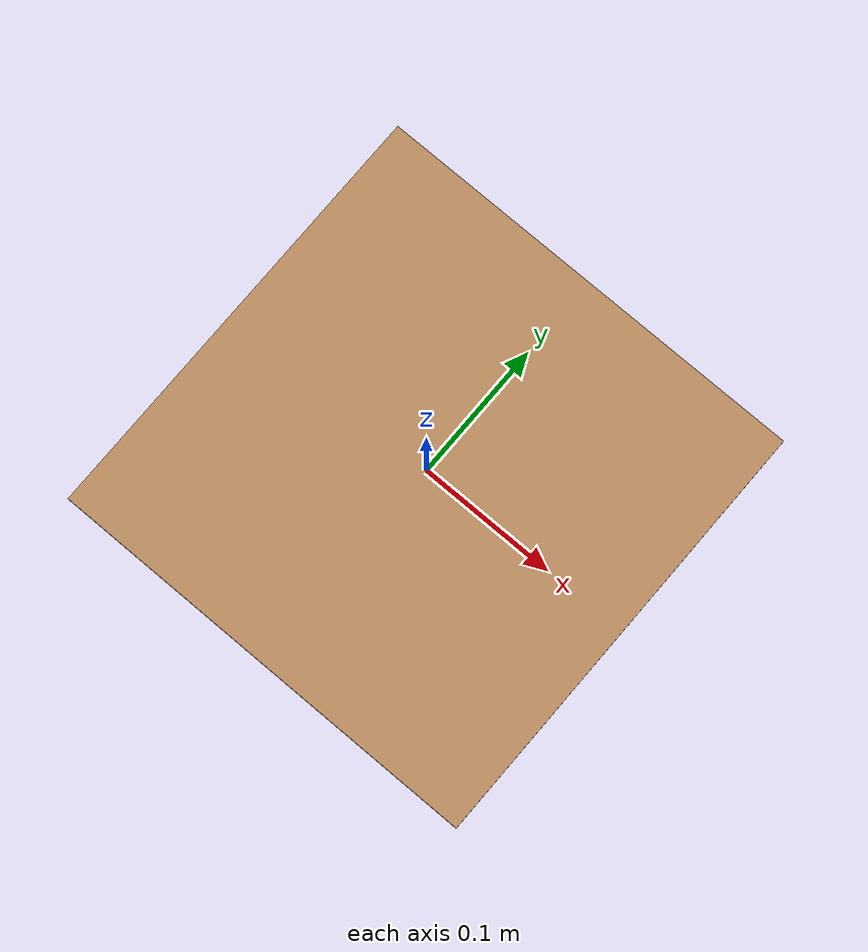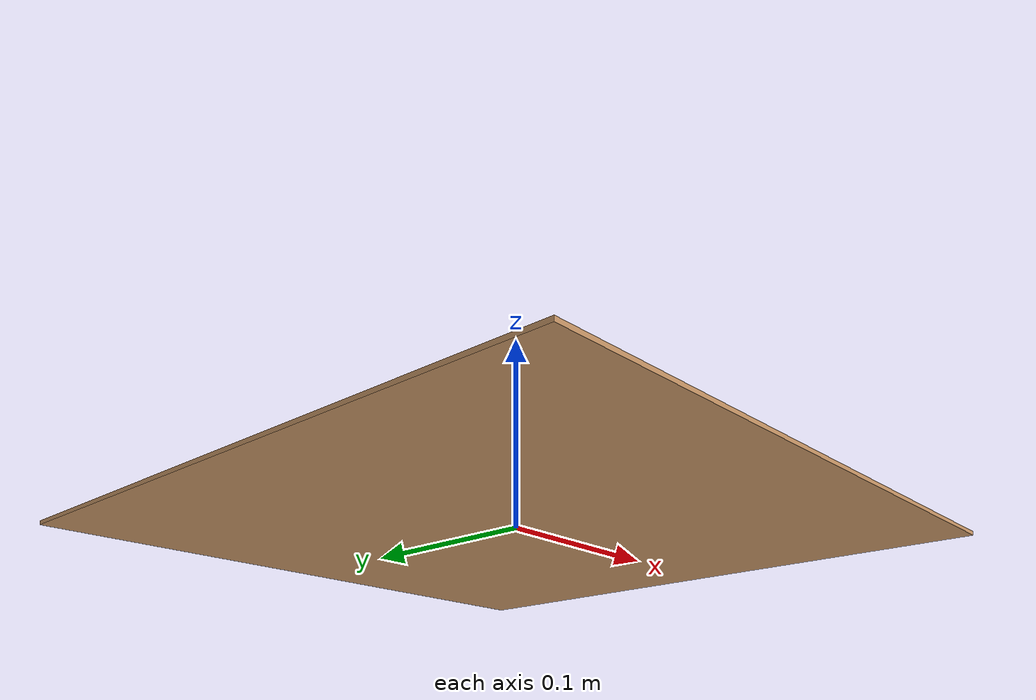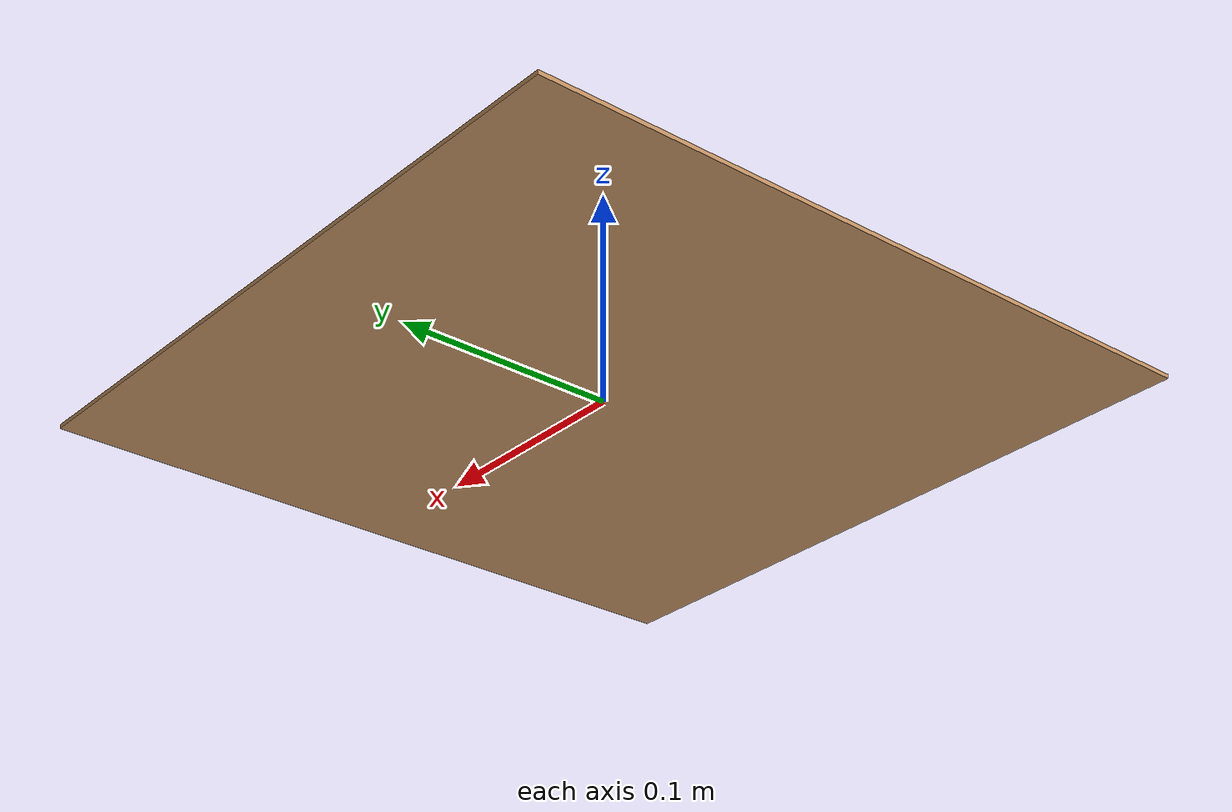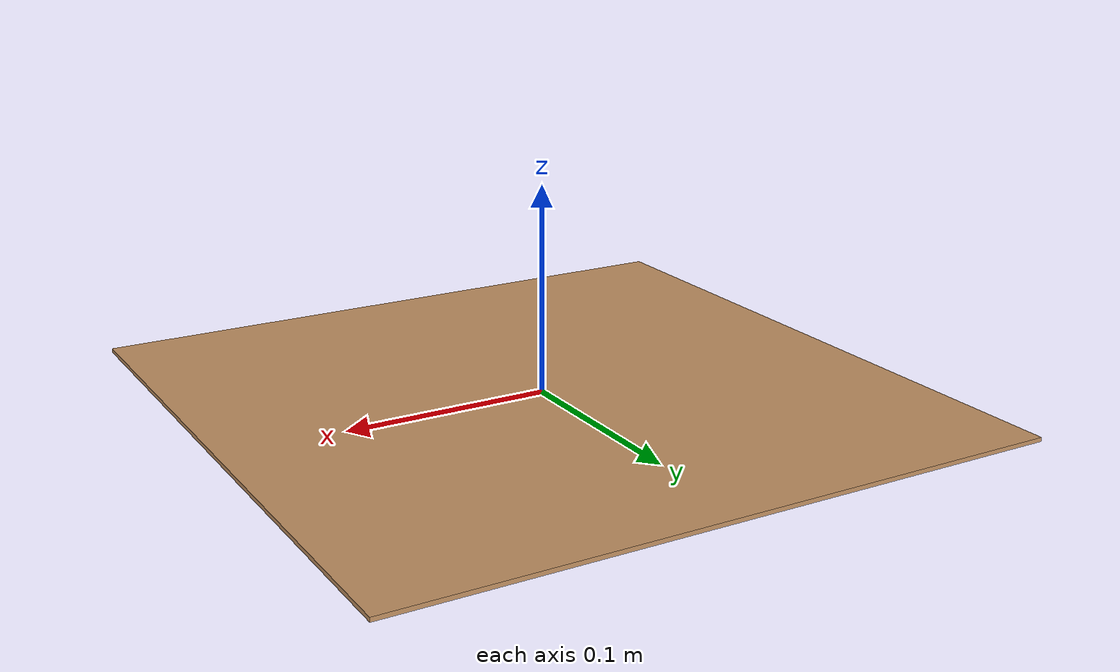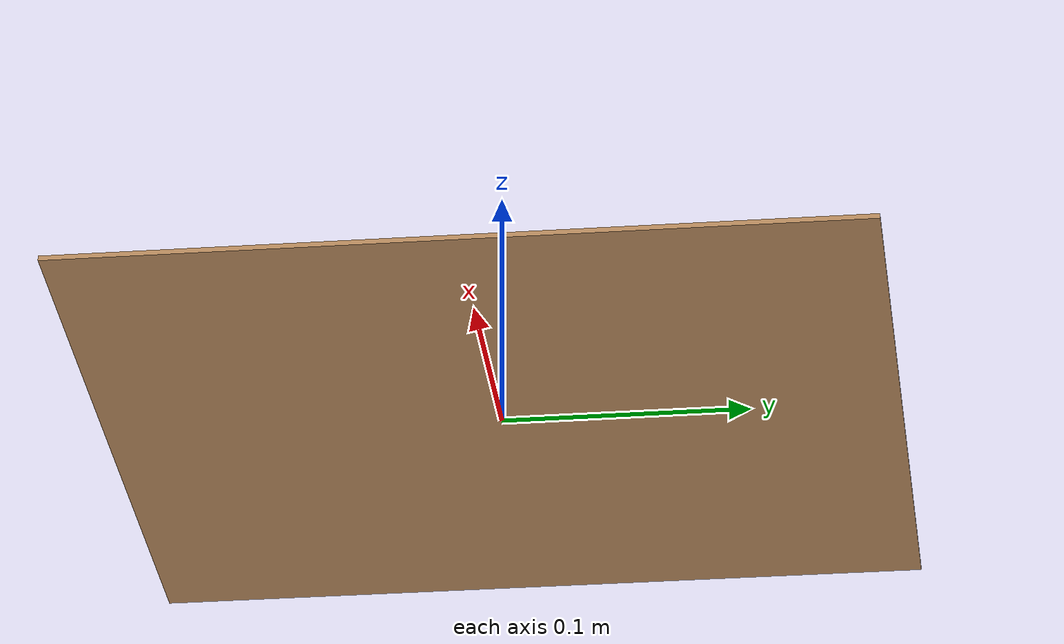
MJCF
<mujoco>
    <asset>
        <texture
            name="chessboard_texture" type="2d" builtin="checker"
            rgb1="0.616 0.341 0.106" rgb2="0.902 0.8 0.671"
            width="300" height="300">
        </texture>
        <material
            name="chessboard_mat" texture="chessboard_texture" texrepeat="4 4"
            texuniform="false">
        </material>
    </asset>
    <worldbody>
        <body name="chessboard">
            <geom
                name="chessboard" size="0.16 0.16 0.001" type="box"
                contype="0" conaffinity="0" material="chessboard_mat">
            </geom>
        </body>
    </worldbody>
</mujoco>
